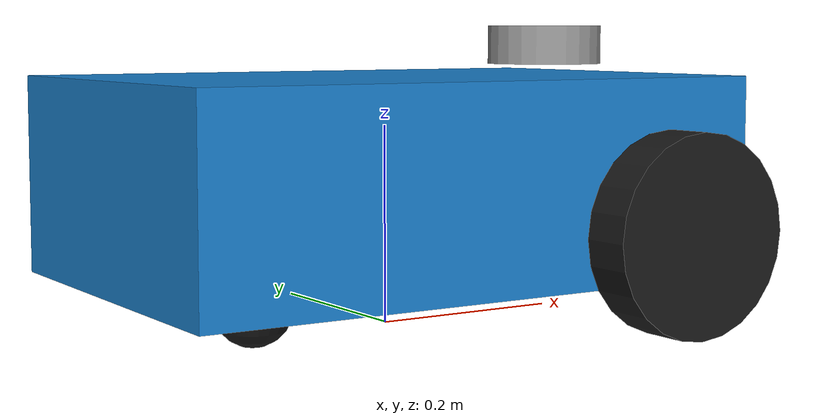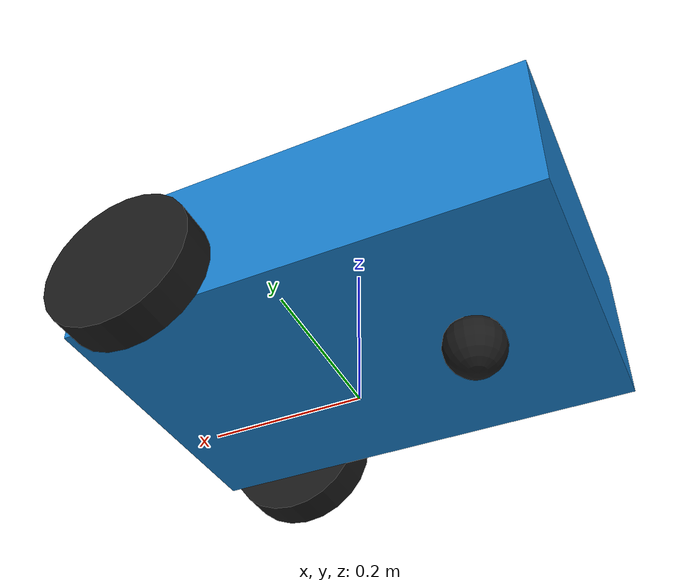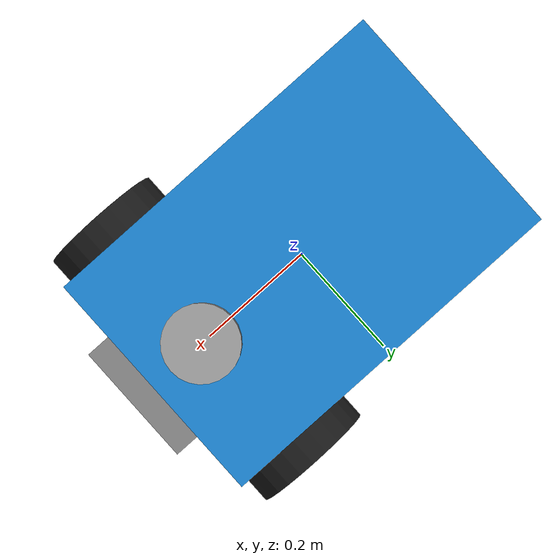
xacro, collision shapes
<?xml version="1.0"?>
<robot name="two_wheel_robot" xmlns:xacro="http://www.ros.org/wiki/xacro">

  <!-- Define Pi -->
  <xacro:property name="pi" value="3.141592653589793"/>

  <xacro:arg name="mesh_path" default="package://robot_description/meshes/"/>
  <xacro:include filename="$(find robot_description)/urdf/robot.gazebo.xacro"/>

  <!-- Base properties -->
  <xacro:property name="base_length" value="0.6"/>
  <xacro:property name="base_width" value="0.4"/>
  <xacro:property name="base_height" value="0.2"/>
  <xacro:property name="base_mass" value="5.0"/>

  <!-- Wheel properties -->
  <xacro:property name="wheel_radius" value="0.1"/>
  <xacro:property name="wheel_width" value="0.05"/>
  <xacro:property name="wheel_mass" value="0.5"/>

  <xacro:property name="wheel_x_offset" value="0.2"/>
  <xacro:property name="wheel_y_offset" value="0.225"/>
  <xacro:property name="wheel_z_offset" value="-0.05"/>

  <!-- Base link -->
  <link name="base_link">
    <visual>
      <geometry>
        <box size="${base_length} ${base_width} ${base_height}"/>
      </geometry>
      <material name="chassis_color">
        <color rgba="0.1 0.5 0.8 1.0"/>
      </material>
    </visual>
    <collision>
      <geometry>
        <box size="${base_length} ${base_width} ${base_height}"/>
      </geometry>
    </collision>
    <inertial>
      <mass value="${base_mass}"/>
      <origin xyz="0 0 0" rpy="0 0 0"/>
      <inertia
        ixx="${(1/12) * base_mass * (base_width*base_width + base_height*base_height)}"
        ixy="0.0"
        ixz="0.0"
        iyy="${(1/12) * base_mass * (base_length*base_length + base_height*base_height)}"
        iyz="0.0"
        izz="${(1/12) * base_mass * (base_length*base_length + base_width*base_width)}"/>
    </inertial>
  </link>

<!-- Base footprint -->
  <link name="base_footprint"/>

  <joint name="base_footprint_joint" type="fixed">
    <parent link="base_footprint"/>
    <child link="base_link"/>
    <origin xyz="0 0 0.15" rpy="0 0 0"/>
  </joint>

  <!-- Define the wheel macro -->
  <xacro:macro name="wheel" params="prefix x_reflect y_reflect">
    <!-- Wheel link -->
    <link name="${prefix}_wheel_link">
      <visual>
        <origin xyz="0 0 0" rpy="${pi/2} 0 0"/>
        <geometry>
          <cylinder radius="${wheel_radius}" length="${wheel_width}"/>
        </geometry>
        <material name="wheel_color">
          <color rgba="0.1 0.1 0.1 1.0"/>
        </material>
      </visual>
      <collision>
        <origin xyz="0 0 0" rpy="${pi/2} 0 0"/>
        <geometry>
          <cylinder radius="${wheel_radius}" length="${wheel_width}"/>
        </geometry>
      </collision>
      <inertial>
        <mass value="${wheel_mass}"/>
        <origin xyz="0 0 0" rpy="${pi/2} 0 0"/>
        <inertia
          ixx="${(1/12) * wheel_mass * (3*wheel_radius*wheel_radius + wheel_width*wheel_width)}"
          ixy="0.0"
          ixz="0.0"
          iyy="${(1/12) * wheel_mass * (3*wheel_radius*wheel_radius + wheel_width*wheel_width)}"
          iyz="0.0"
          izz="${(1/2) * wheel_mass * (wheel_radius*wheel_radius)}"/>
      </inertial>
    </link>

    <!-- Wheel joint -->
    <joint name="${prefix}_wheel_joint" type="continuous">
      <parent link="base_link"/>
      <child link="${prefix}_wheel_link"/>
      <origin
        xyz="${x_reflect * wheel_x_offset} ${y_reflect * wheel_y_offset} ${wheel_z_offset}"
        rpy="0 0 0"/>
      <axis xyz="0 1 0"/>
    </joint>

    </xacro:macro>

    <!-- Caster Wheel link -->
    <link name="caster_wheel">
      <visual>
        <geometry>
          <sphere radius= "0.04"/>
        </geometry>
        <material name="black">
          <color rgba="0.1 0.1 0.1 1.0"/>
        </material>
      </visual>
      <collision>
        <geometry>
          <sphere radius="0.04"/>
        </geometry>
      </collision>
      <inertial>
        <mass value="0.2"/>
        <origin xyz="0 0 0"/>
        <inertia
          ixx="0.0001"
          ixy="0.0"
          ixz="0.0"
          iyy="0.0001"
          iyz="0.0"
          izz="0.0001"/>
      </inertial>
    </link>

<!-- Caster joint -->
    <joint name="caster_joint" type="fixed">
      <parent link="base_link"/>
      <child link="caster_wheel"/>
      <origin
        xyz="-0.15 0 -0.12"
        rpy="0 0 0"/>
    </joint>

  <!-- Gazebo friction properties-Caster wheel -->
  <gazebo reference = "caster_wheel">
   <mu1>0.0</mu1>
   <mu2>0.0</mu2>
   <kp>1000000.0</kp>
   <kd>100.0</kd>
  </gazebo>

  <!-- Instantiate wheels: front left, front right, and caster in the back -->
  <xacro:wheel prefix="front_left"  x_reflect="1" y_reflect="1"/>
  <xacro:wheel prefix="front_right" x_reflect="1" y_reflect="-1"/>

  <!-- LiDAR link -->
  <link name="lidar_link">
    <visual>
      <origin xyz="0 0 0" rpy="0 0 0"/>
      <geometry>
        <mesh filename="$(arg mesh_path)lidar.STL"/>
      </geometry>
      <material name="lidar_gray">
        <color rgba="0.6 0.6 0.6 1.0"/>
      </material>
    </visual>
    <collision>
      <origin xyz="0 0 0" rpy="0 0 0"/>
      <geometry>
        <cylinder radius="0.06" length="0.04"/>
      </geometry>
    </collision>
    <inertial>
      <mass value="0.2"/>
      <origin xyz="0 0 0" rpy="0 0 0"/>
      <inertia ixx="0.0001" ixy="0.0" ixz="0.0"
               iyy="0.0001" iyz="0.0"
               izz="0.0001"/>
    </inertial>
  </link>

  <joint name="lidar_joint" type="fixed">
    <parent link="base_link"/>
    <child link="lidar_link"/>
    <origin xyz="0.2 0 0.13" rpy="0 0 0"/>
  </joint>

  <!-- Camera link -->
  <link name="camera_link">
    <visual>
      <origin xyz="0 0 0" rpy="0 0 0"/>
      <geometry>
        <mesh filename="$(arg mesh_path)zed.stl"/>
      </geometry>
      <material name="camera_black">
        <color rgba="0.5 0.5 0.5 1.0"/>
      </material>
    </visual>
    <collision>
      <origin xyz="0 0 0" rpy="0 0 0"/>
      <geometry>
        <box size="0.08 0.2 0.03"/>
      </geometry>
    </collision>
    <inertial>
      <mass value="0.1"/>
      <origin xyz="0 0 0" rpy="0 0 0"/>
      <inertia ixx="0.00005" ixy="0.0" ixz="0.0"
               iyy="0.00005" iyz="0.0"
               izz="0.00005"/>
    </inertial>
  </link>

  <joint name="camera_joint" type="fixed">
    <parent link="base_link"/>
    <child link="camera_link"/>
    <origin xyz="0.3 0 0.08" rpy="0 0 0"/>
  </joint>

</robot>
